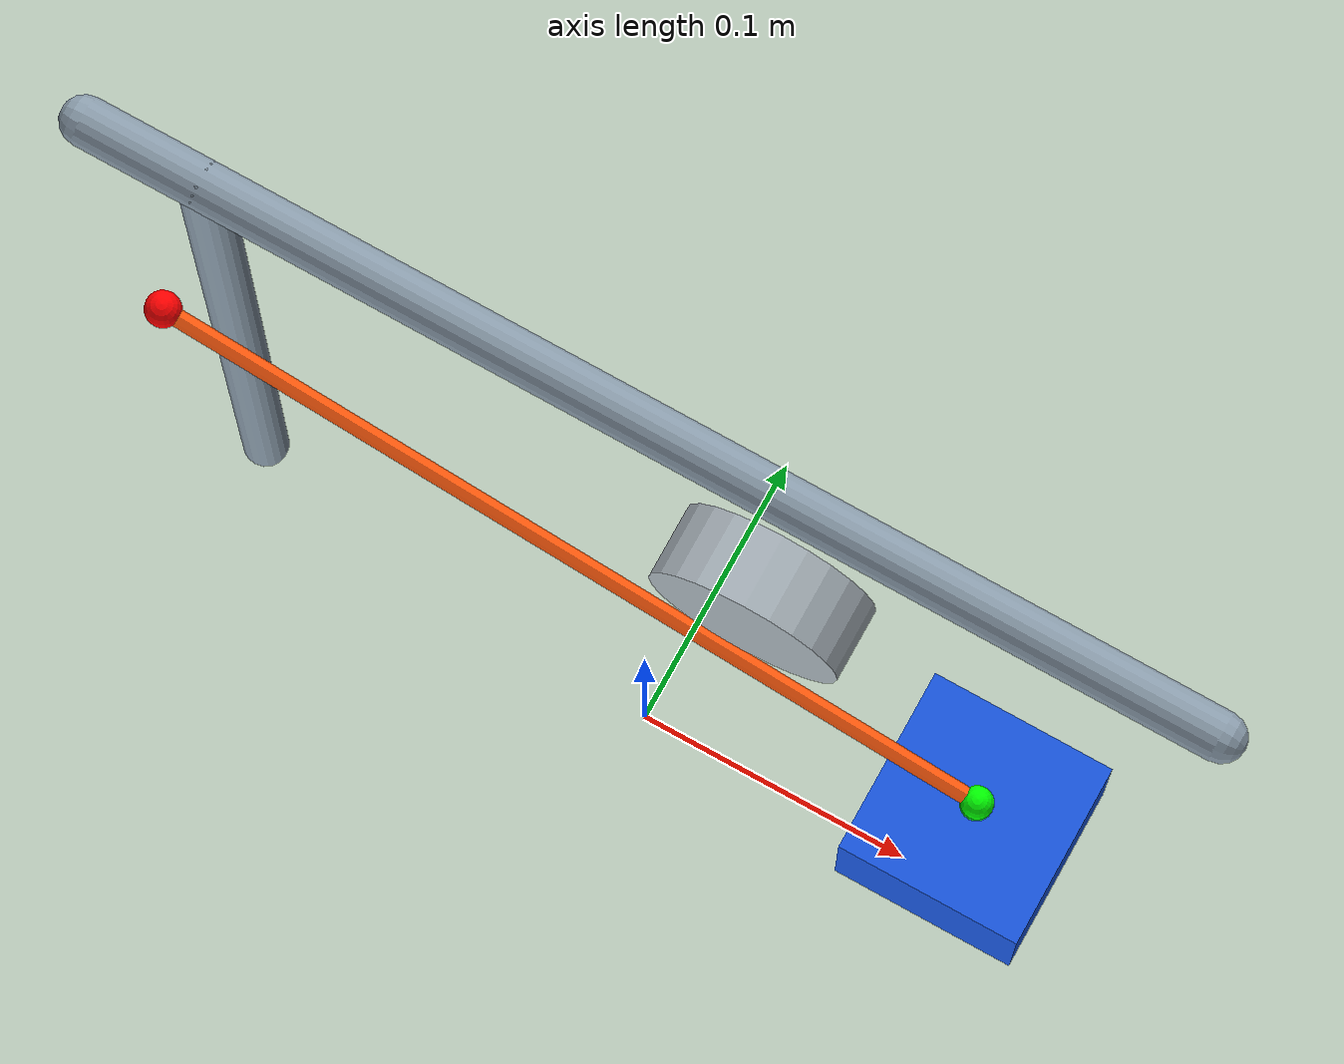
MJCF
<mujoco model="cable_demo_cpp_plugin_frictional_pulley_free_payload">
  <compiler autolimits="true" angle="radian" />
  <option timestep="0.001" gravity="0 0 -9.81" integrator="implicit" />

  <extension>
    <plugin plugin="mujoco.cable.unilateral">
      <instance name="frictional_pulley_cable">
        <config key="stiffness" value="650.0" />
        <config key="damping" value="2.5" />
        <config key="slack" value="0.0005" />
        <config key="home_length" value="auto_initial" />
        <config key="pretension_offset" value="0.010" />
        <config key="max_tension" value="80.0" />
        <config key="ctrl_mode" value="target_contraction" />
        <config key="capstan_mu" value="0.25" />
        <config key="capstan_direction" value="forward" />
      </instance>
    </plugin>
  </extension>

  <asset>
    <material name="mat_frame" rgba="0.55 0.62 0.68 1" />
    <material name="mat_payload" rgba="0.1 0.35 0.9 1" />
    <material name="mat_pulley" rgba="0.68 0.72 0.75 1" />
    <material name="mat_anchor" rgba="1.0 0.05 0.02 1" />
  </asset>

  <worldbody>
    <light name="key" pos="0 -1 1" dir="0 1 -1" />
    <camera name="overview" pos="0 -0.60 0.18" xyaxes="1 0 0 0 0 1" />

    <geom name="left_post" type="capsule" fromto="-0.16 0.02 0 -0.16 0.02 0.34" size="0.008" material="mat_frame" contype="0" conaffinity="0" />
    <geom name="top_beam" type="capsule" fromto="-0.20 0.02 0.34 0.18 0.02 0.34" size="0.008" material="mat_frame" contype="0" conaffinity="0" />
    <site name="site_fixed_anchor" pos="-0.17 0 0.24" size="0.006" rgba="1 0 0 1" />

    <geom name="friction_pulley_visual" type="cylinder" pos="0.04 0 0.30" euler="1.57079632679 0 0" size="0.032 0.012" material="mat_pulley" contype="0" conaffinity="0" />
    <site name="site_friction_pulley_side_upper" pos="0.04 0 0.358" size="0.0005" rgba="1 0.8 0 0" />

    <body name="load" pos="0.12 0 0.13">
      <freejoint name="load_free" />
      <geom name="load_mass" type="box" size="0.032 0.032 0.023" mass="0.28" material="mat_payload" />
      <geom name="load_hook_visual" type="sphere" pos="0 0 0.030" size="0.0055" rgba="0 0.85 0.15 1" contype="0" conaffinity="0" />
      <site name="site_load_hook" pos="0 0 0.033" size="0.0055" rgba="0 1 0 1" />
    </body>
  </worldbody>

  <tendon>
    <spatial name="frictional_pulley_load" limited="false" width="0.003" rgba="1.0 0.35 0.05 0.95">
      <site site="site_fixed_anchor" />
      <geom geom="friction_pulley_visual" sidesite="site_friction_pulley_side_upper" />
      <site site="site_load_hook" />
    </spatial>
  </tendon>

  <actuator>
    <plugin name="frictional_pulley_cable_actuator" tendon="frictional_pulley_load" instance="frictional_pulley_cable" ctrlrange="0 0.08" />
  </actuator>

  <sensor>
    <plugin name="frictional_pulley_cable_state" instance="frictional_pulley_cable" />
  </sensor>
</mujoco>
